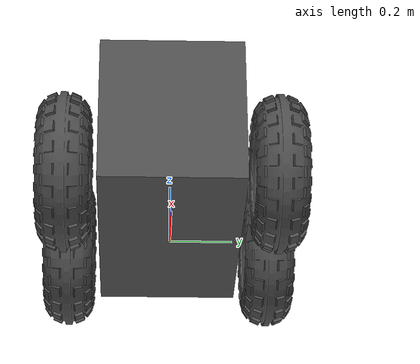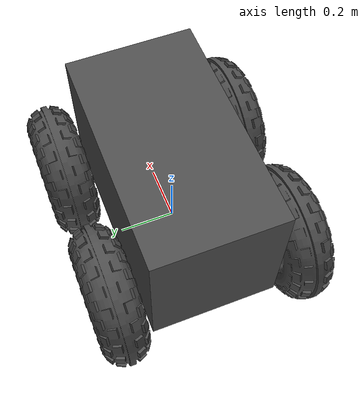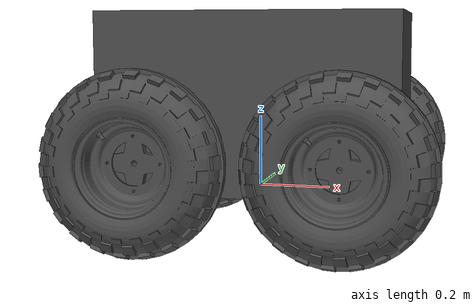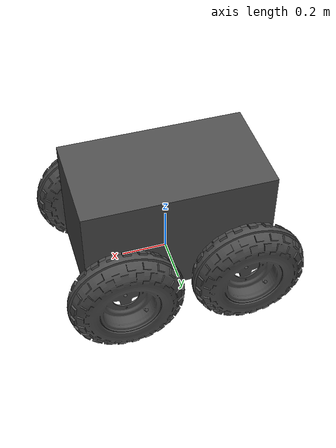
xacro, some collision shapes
<?xml version="1.0"?>
<robot xmlns:xacro="http://www.ros.org/wiki/xacro" name="segwayrmp400">

<!-- Some Color Materials -->
  <material name="Green"><color rgba="0.0 0.8 0.0 1.0"/></material>
  <material name="Red"><color rgba="0.8 0.0 0.0 1.0"/></material>
  <material name="White"><color rgba="1.0 1.0 1.0 1.0"/></material>
  <material name="Blue"><color rgba="0.0 0.0 0.8 1.0"/></material>
  <material name="Black"><color rgba="0.0 0.0 0.0 1.0"/></material>
  <material name="Grey"><color rgba="0.3 0.3 0.3 1.0"/></material>
  <material name="atrv_orange"><color rgba="0.8 0.16 0.0 1" /></material>
  <material name="clear"><color rgba="0 0 0 0"/></material>

<!-- xacro parameters -->
  <xacro:property name="M_PI" value="3.14159"/>
  <!-- Robot parameters -->
  <xacro:property name="ground_clearance" value="0.13" />
  <!-- This is not including the bumpers -->
  <xacro:property name="chassis_length" value="0.83" />
  <!-- This is including the bumpers -->
  <xacro:property name="chassis_length_bumpers" value="1.02" />
  <!-- This is not including the wheels -->
  <xacro:property name="chassis_width" value="0.46" />
  <!-- This is not including equipment and racks on the top -->
  <xacro:property name="chassis_height" value="0.50" />
  <xacro:property name="wheel_radius" value="0.20"/>
  <xacro:property name="wheel_width" value="0.15"/>

<!-- xacro macros -->
  <xacro:macro name="default_inertial" params="mass">
    <inertial>
      <mass value="${mass}" />
      <inertia ixx="1.0" ixy="0.0" ixz="0.0"
               iyy="1.0" iyz="0.0"
               izz="1.0" />
      </inertial>
  </xacro:macro>

<!-- links -->

  <!-- base_link -->
  <!-- The link that is the origin of all of the components of the -->
  <!-- robot and should also represent the main chassis via inertial, -->
  <!-- visual, and geometry elements of the link -->
  <link name="base_link">
    <xacro:default_inertial mass="80"/>

    <visual>
      <origin xyz="0 0 0" rpy="0 0 0"/>
      <geometry>
        <mesh filename="package://segwayrmp400_description/meshes/segwayrmp400_chassis.stl"/>
      </geometry>
      <material name="Grey"/>
    </visual>

    <collision>
      <origin xyz="0 0 ${chassis_height/2.0}" rpy="0 0 0" />
      <geometry>
        <box size="${chassis_length} ${chassis_width} ${chassis_height}" />
      </geometry>
    </collision>
  </link>

  <!-- hitch Link -->
  <link name="hitch_link"/>

  <joint name="base_hitch_joint" type="fixed">
    <origin xyz="-0.56 0.0 0.0" rpy="0 0 0"/>
    <parent link="base_link"/>
    <child link="hitch_link"/>
  </joint>

  <!-- laser Link -->
  <link name="base_laser_link"/>

  <joint name="base_laser_joint" type="fixed">
    <origin xyz="0.55 0.0 0.25" rpy="0 0 0"/>
    <parent link="base_link"/>
    <child link="base_laser_link"/>
  </joint>

  <!-- This is a macro for the links that describe the wheels -->
  <xacro:macro name="wheel" params="prefix reflect_x reflect_y">
    <link name="${prefix}_wheel_link">
      <xacro:default_inertial mass="1"/>

      <visual>
        <origin xyz="0 0 ${wheel_width/2}" rpy="0 0 0" />
        <geometry>
          <mesh filename="package://segwayrmp400_description/meshes/segwayrmp400_wheel.stl"/>
        </geometry>
        <material name="Grey"/>
      </visual>

      <collision>
        <origin xyz="0 0 ${wheel_width/2}" rpy="0 0 0" />
        <geometry>
          <cylinder radius="${wheel_radius}" length="${wheel_width}"/>
        </geometry>
      </collision>
    </link>

    <!-- base_link -> ${prefix}_wheel_link -->
    <joint name="${prefix}_wheel_joint" type="fixed">
      <parent link="base_link"/>
      <child link="${prefix}_wheel_link"/>
      <origin xyz="${(0.27)*reflect_x} ${(chassis_width/2 + 0.03)*reflect_y} ${0.1}"
              rpy="${(M_PI/2)*reflect_y*-1} 0 0"/>
    </joint>
  </xacro:macro>

  <!-- left_front_wheel_link -->
  <xacro:wheel prefix="left_front" reflect_x="1" reflect_y="1" />
  <!-- left_rear_wheel_link -->
  <xacro:wheel prefix="left_rear" reflect_x="-1" reflect_y="1" />
  <!-- right_front_wheel_link -->
  <xacro:wheel prefix="right_front" reflect_x="1" reflect_y="-1" />
  <!-- right_rear_wheel_link -->
  <xacro:wheel prefix="right_rear" reflect_x="-1" reflect_y="-1" />

</robot>
